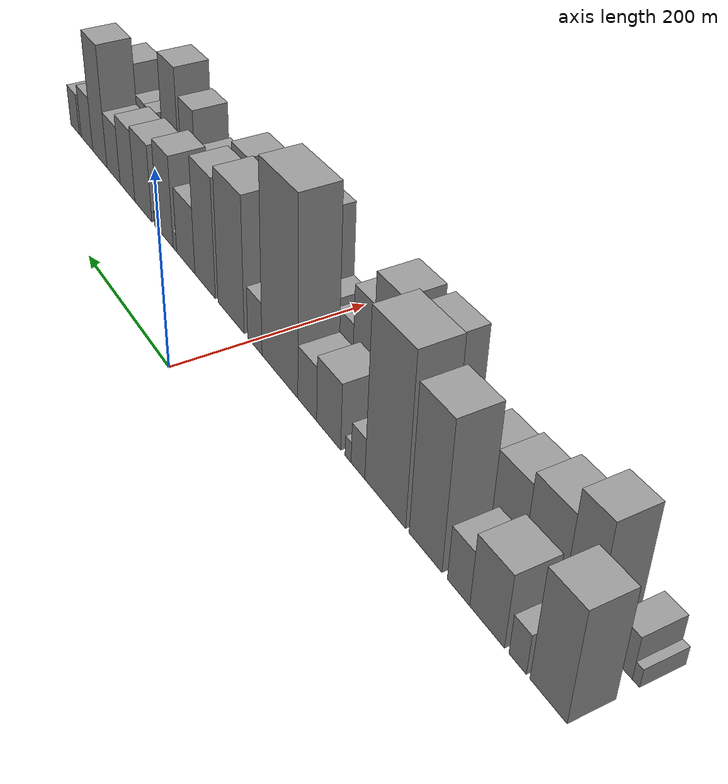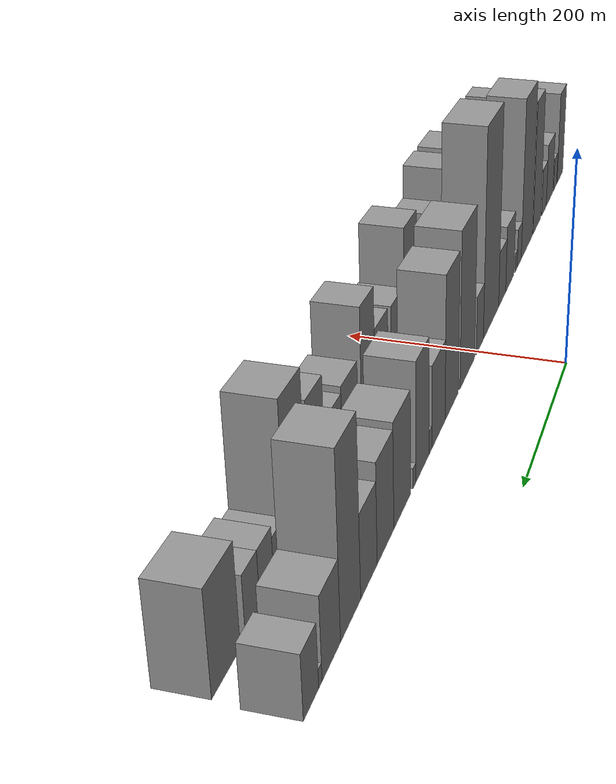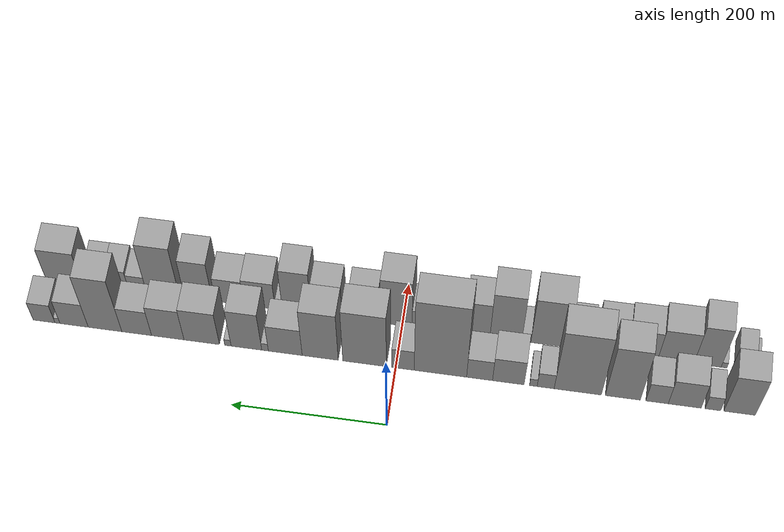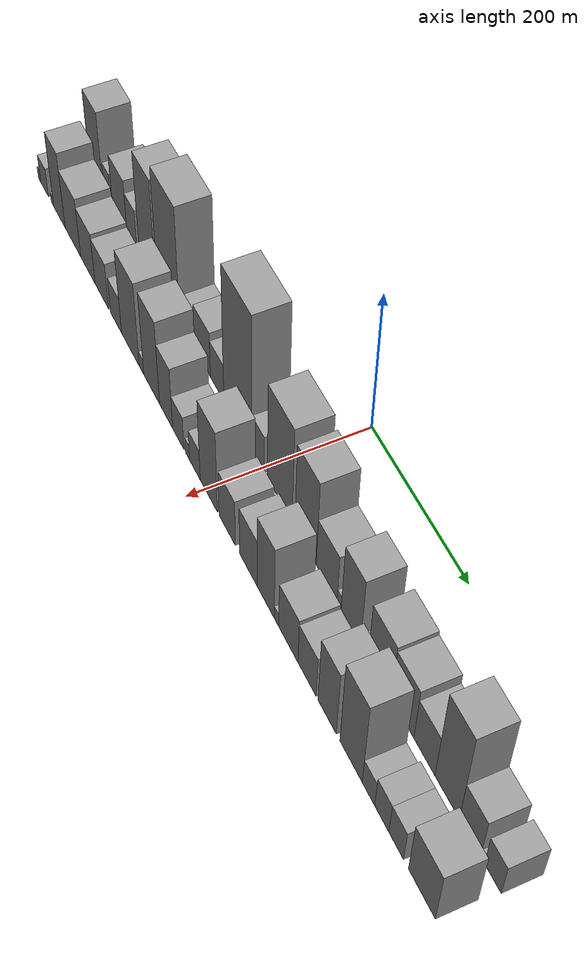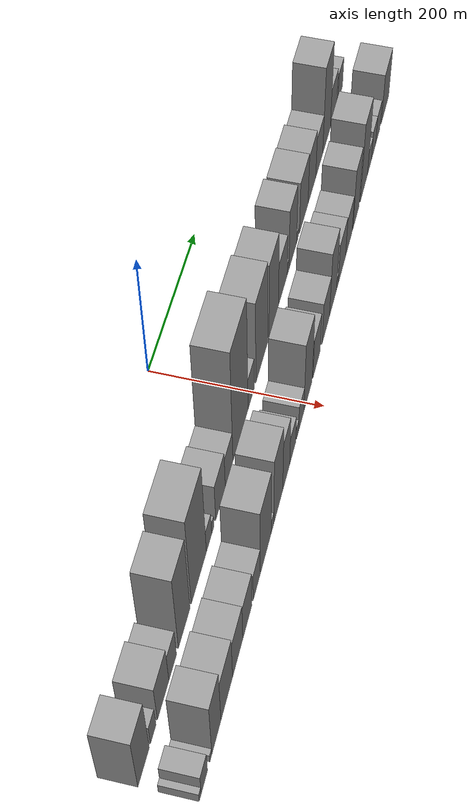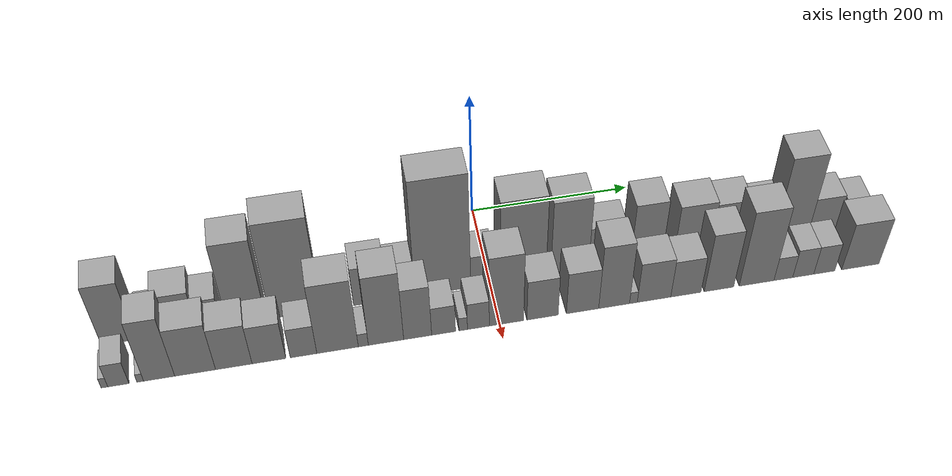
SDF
<sdf version="1.6">
 <world name="default">
  <scene>
   <sky><clouds><speed>12</speed></clouds></sky>
   <ambient>0.4 0.4 0.4 1</ambient>
   <background>0.7 0.7 0.7 1</background>
   <shadows>1</shadows>
  </scene>
  <gravity>0 0 -9.8066</gravity>
  <magnetic_field>6e-06 2.3e-05 -4.2e-05</magnetic_field>
  <physics default="0" name="default_physics" type="ode">
   <ode>
    <solver>
     <type>quick</type>
     <iters>10</iters>
     <sor>1.0</sor>
     <use_dynamic_moi_rescaling>0</use_dynamic_moi_rescaling>
    </solver>
    <constraints>
     <cfm>0</cfm>
     <erp>0.2</erp>
     <contact_max_correcting_vel>100</contact_max_correcting_vel>
     <contact_surface_layer>0.001</contact_surface_layer>
    </constraints>
   </ode>
   <max_step_size>0.004</max_step_size>
   <real_time_factor>1</real_time_factor>
   <real_time_update_rate>250</real_time_update_rate>
  </physics>
  <light name="sun" type="directional">
   <pose>0 0 10 0 0 0</pose>
   <diffuse>0.8 0.8 0.8 1</diffuse>
   <specular>0.2 0.2 0.2 1</specular>
   <attenuation>
    <range>1000</range>
    <constant>0.9</constant>
    <linear>0.01</linear>
    <quadratic>0.001</quadratic>
   </attenuation>
   <direction>-0.5 0.1 -0.9</direction>
  </light>
  <model name="building_1">
   <static>1</static>
   <pose>100.0000 -440.0849 0 0.000000 0.000000 0.000000</pose>
   <link name="link">
    <pose>0 0 54.00 0 0 0</pose>
    <collision name="collision"><geometry><box><size>40.0000 39.8303 108.0000</size></box></geometry></collision>
    <visual name="visual">
     <cast_shadows>0</cast_shadows>
     <geometry><box><size>40.0000 39.8303 108.0000</size></box></geometry>
     <material>
      <script>
       <uri>model://grey_wall/materials/scripts</uri>
       <uri>model://grey_wall/materials/textures</uri>
       <name>vrc/grey_wall</name>
      </script>
     </material>
    </visual>
   </link>
  </model>
  <model name="building_2">
   <static>1</static>
   <pose>100.0000 -406.2775 0 0.000000 0.000000 0.000000</pose>
   <link name="link">
    <pose>0 0 19.50 0 0 0</pose>
    <collision name="collision"><geometry><box><size>40.0000 19.7844 39.0000</size></box></geometry></collision>
    <visual name="visual">
     <cast_shadows>0</cast_shadows>
     <geometry><box><size>40.0000 19.7844 39.0000</size></box></geometry>
     <material>
      <script>
       <uri>model://grey_wall/materials/scripts</uri>
       <uri>model://grey_wall/materials/textures</uri>
       <name>vrc/grey_wall</name>
      </script>
     </material>
    </visual>
   </link>
  </model>
  <model name="building_3">
   <static>1</static>
   <pose>100.0000 -370.4484 0 0.000000 0.000000 0.000000</pose>
   <link name="link">
    <pose>0 0 36.00 0 0 0</pose>
    <collision name="collision"><geometry><box><size>40.0000 41.8738 72.0000</size></box></geometry></collision>
    <visual name="visual">
     <cast_shadows>0</cast_shadows>
     <geometry><box><size>40.0000 41.8738 72.0000</size></box></geometry>
     <material>
      <script>
       <uri>model://grey_wall/materials/scripts</uri>
       <uri>model://grey_wall/materials/textures</uri>
       <name>vrc/grey_wall</name>
      </script>
     </material>
    </visual>
   </link>
  </model>
  <model name="building_4">
   <static>1</static>
   <pose>100.0000 -335.2728 0 0.000000 0.000000 0.000000</pose>
   <link name="link">
    <pose>0 0 27.00 0 0 0</pose>
    <collision name="collision"><geometry><box><size>40.0000 28.4775 54.0000</size></box></geometry></collision>
    <visual name="visual">
     <cast_shadows>0</cast_shadows>
     <geometry><box><size>40.0000 28.4775 54.0000</size></box></geometry>
     <material>
      <script>
       <uri>model://grey_wall/materials/scripts</uri>
       <uri>model://grey_wall/materials/textures</uri>
       <name>vrc/grey_wall</name>
      </script>
     </material>
    </visual>
   </link>
  </model>
  <model name="building_5">
   <static>1</static>
   <pose>100.0000 -291.6385 0 0.000000 0.000000 0.000000</pose>
   <link name="link">
    <pose>0 0 73.50 0 0 0</pose>
    <collision name="collision"><geometry><box><size>40.0000 44.7910 147.0000</size></box></geometry></collision>
    <visual name="visual">
     <cast_shadows>0</cast_shadows>
     <geometry><box><size>40.0000 44.7910 147.0000</size></box></geometry>
     <material>
      <script>
       <uri>model://grey_wall/materials/scripts</uri>
       <uri>model://grey_wall/materials/textures</uri>
       <name>vrc/grey_wall</name>
      </script>
     </material>
    </visual>
   </link>
  </model>
  <model name="building_6">
   <static>1</static>
   <pose>100.0000 -233.9935 0 0.000000 0.000000 0.000000</pose>
   <link name="link">
    <pose>0 0 85.50 0 0 0</pose>
    <collision name="collision"><geometry><box><size>40.0000 60.4989 171.0000</size></box></geometry></collision>
    <visual name="visual">
     <cast_shadows>0</cast_shadows>
     <geometry><box><size>40.0000 60.4989 171.0000</size></box></geometry>
     <material>
      <script>
       <uri>model://grey_wall/materials/scripts</uri>
       <uri>model://grey_wall/materials/textures</uri>
       <name>vrc/grey_wall</name>
      </script>
     </material>
    </visual>
   </link>
  </model>
  <model name="building_7">
   <static>1</static>
   <pose>100.0000 -192.8441 0 0.000000 0.000000 0.000000</pose>
   <link name="link">
    <pose>0 0 21.00 0 0 0</pose>
    <collision name="collision"><geometry><box><size>40.0000 21.8000 42.0000</size></box></geometry></collision>
    <visual name="visual">
     <cast_shadows>0</cast_shadows>
     <geometry><box><size>40.0000 21.8000 42.0000</size></box></geometry>
     <material>
      <script>
       <uri>model://grey_wall/materials/scripts</uri>
       <uri>model://grey_wall/materials/textures</uri>
       <name>vrc/grey_wall</name>
      </script>
     </material>
    </visual>
   </link>
  </model>
  <model name="building_8">
   <static>1</static>
   <pose>100.0000 -177.0930 0 0.000000 0.000000 0.000000</pose>
   <link name="link">
    <pose>0 0 10.50 0 0 0</pose>
    <collision name="collision"><geometry><box><size>40.0000 9.7020 21.0000</size></box></geometry></collision>
    <visual name="visual">
     <cast_shadows>0</cast_shadows>
     <geometry><box><size>40.0000 9.7020 21.0000</size></box></geometry>
     <material>
      <script>
       <uri>model://grey_wall/materials/scripts</uri>
       <uri>model://grey_wall/materials/textures</uri>
       <name>vrc/grey_wall</name>
      </script>
     </material>
    </visual>
   </link>
  </model>
  <model name="building_9">
   <static>1</static>
   <pose>100.0000 -144.9554 0 0.000000 0.000000 0.000000</pose>
   <link name="link">
    <pose>0 0 34.50 0 0 0</pose>
    <collision name="collision"><geometry><box><size>40.0000 40.5733 69.0000</size></box></geometry></collision>
    <visual name="visual">
     <cast_shadows>0</cast_shadows>
     <geometry><box><size>40.0000 40.5733 69.0000</size></box></geometry>
     <material>
      <script>
       <uri>model://grey_wall/materials/scripts</uri>
       <uri>model://grey_wall/materials/textures</uri>
       <name>vrc/grey_wall</name>
      </script>
     </material>
    </visual>
   </link>
  </model>
  <model name="building_10">
   <static>1</static>
   <pose>100.0000 -107.9906 0 0.000000 0.000000 0.000000</pose>
   <link name="link">
    <pose>0 0 28.50 0 0 0</pose>
    <collision name="collision"><geometry><box><size>40.0000 33.3563 57.0000</size></box></geometry></collision>
    <visual name="visual">
     <cast_shadows>0</cast_shadows>
     <geometry><box><size>40.0000 33.3563 57.0000</size></box></geometry>
     <material>
      <script>
       <uri>model://grey_wall/materials/scripts</uri>
       <uri>model://grey_wall/materials/textures</uri>
       <name>vrc/grey_wall</name>
      </script>
     </material>
    </visual>
   </link>
  </model>
  <model name="building_11">
   <static>1</static>
   <pose>100.0000 -57.4001 0 0.000000 0.000000 0.000000</pose>
   <link name="link">
    <pose>0 0 102.00 0 0 0</pose>
    <collision name="collision"><geometry><box><size>40.0000 67.8247 204.0000</size></box></geometry></collision>
    <visual name="visual">
     <cast_shadows>0</cast_shadows>
     <geometry><box><size>40.0000 67.8247 204.0000</size></box></geometry>
     <material>
      <script>
       <uri>model://grey_wall/materials/scripts</uri>
       <uri>model://grey_wall/materials/textures</uri>
       <name>vrc/grey_wall</name>
      </script>
     </material>
    </visual>
   </link>
  </model>
  <model name="building_12">
   <static>1</static>
   <pose>100.0000 -8.9918 0 0.000000 0.000000 0.000000</pose>
   <link name="link">
    <pose>0 0 28.50 0 0 0</pose>
    <collision name="collision"><geometry><box><size>40.0000 28.9918 57.0000</size></box></geometry></collision>
    <visual name="visual">
     <cast_shadows>0</cast_shadows>
     <geometry><box><size>40.0000 28.9918 57.0000</size></box></geometry>
     <material>
      <script>
       <uri>model://grey_wall/materials/scripts</uri>
       <uri>model://grey_wall/materials/textures</uri>
       <name>vrc/grey_wall</name>
      </script>
     </material>
    </visual>
   </link>
  </model>
  <model name="building_13">
   <static>1</static>
   <pose>100.0000 40.7301 0 0.000000 0.000000 0.000000</pose>
   <link name="link">
    <pose>0 0 73.50 0 0 0</pose>
    <collision name="collision"><geometry><box><size>40.0000 56.4522 147.0000</size></box></geometry></collision>
    <visual name="visual">
     <cast_shadows>0</cast_shadows>
     <geometry><box><size>40.0000 56.4522 147.0000</size></box></geometry>
     <material>
      <script>
       <uri>model://grey_wall/materials/scripts</uri>
       <uri>model://grey_wall/materials/textures</uri>
       <name>vrc/grey_wall</name>
      </script>
     </material>
    </visual>
   </link>
  </model>
  <model name="building_14">
   <static>1</static>
   <pose>100.0000 98.3930 0 0.000000 0.000000 0.000000</pose>
   <link name="link">
    <pose>0 0 66.00 0 0 0</pose>
    <collision name="collision"><geometry><box><size>40.0000 46.8735 132.0000</size></box></geometry></collision>
    <visual name="visual">
     <cast_shadows>0</cast_shadows>
     <geometry><box><size>40.0000 46.8735 132.0000</size></box></geometry>
     <material>
      <script>
       <uri>model://grey_wall/materials/scripts</uri>
       <uri>model://grey_wall/materials/textures</uri>
       <name>vrc/grey_wall</name>
      </script>
     </material>
    </visual>
   </link>
  </model>
  <model name="building_15">
   <static>1</static>
   <pose>100.0000 143.9067 0 0.000000 0.000000 0.000000</pose>
   <link name="link">
    <pose>0 0 37.50 0 0 0</pose>
    <collision name="collision"><geometry><box><size>40.0000 44.1539 75.0000</size></box></geometry></collision>
    <visual name="visual">
     <cast_shadows>0</cast_shadows>
     <geometry><box><size>40.0000 44.1539 75.0000</size></box></geometry>
     <material>
      <script>
       <uri>model://grey_wall/materials/scripts</uri>
       <uri>model://grey_wall/materials/textures</uri>
       <name>vrc/grey_wall</name>
      </script>
     </material>
    </visual>
   </link>
  </model>
  <model name="building_16">
   <static>1</static>
   <pose>100.0000 170.3038 0 0.000000 0.000000 0.000000</pose>
   <link name="link">
    <pose>0 0 10.50 0 0 0</pose>
    <collision name="collision"><geometry><box><size>40.0000 8.6403 21.0000</size></box></geometry></collision>
    <visual name="visual">
     <cast_shadows>0</cast_shadows>
     <geometry><box><size>40.0000 8.6403 21.0000</size></box></geometry>
     <material>
      <script>
       <uri>model://grey_wall/materials/scripts</uri>
       <uri>model://grey_wall/materials/textures</uri>
       <name>vrc/grey_wall</name>
      </script>
     </material>
    </visual>
   </link>
  </model>
  <model name="building_17">
   <static>1</static>
   <pose>100.0000 194.6570 0 0.000000 0.000000 0.000000</pose>
   <link name="link">
    <pose>0 0 52.50 0 0 0</pose>
    <collision name="collision"><geometry><box><size>40.0000 40.0660 105.0000</size></box></geometry></collision>
    <visual name="visual">
     <cast_shadows>0</cast_shadows>
     <geometry><box><size>40.0000 40.0660 105.0000</size></box></geometry>
     <material>
      <script>
       <uri>model://grey_wall/materials/scripts</uri>
       <uri>model://grey_wall/materials/textures</uri>
       <name>vrc/grey_wall</name>
      </script>
     </material>
    </visual>
   </link>
  </model>
  <model name="building_18">
   <static>1</static>
   <pose>100.0000 218.8424 0 0.000000 0.000000 0.000000</pose>
   <link name="link">
    <pose>0 0 9.00 0 0 0</pose>
    <collision name="collision"><geometry><box><size>40.0000 8.3046 18.0000</size></box></geometry></collision>
    <visual name="visual">
     <cast_shadows>0</cast_shadows>
     <geometry><box><size>40.0000 8.3046 18.0000</size></box></geometry>
     <material>
      <script>
       <uri>model://grey_wall/materials/scripts</uri>
       <uri>model://grey_wall/materials/textures</uri>
       <name>vrc/grey_wall</name>
      </script>
     </material>
    </visual>
   </link>
  </model>
  <model name="building_19">
   <static>1</static>
   <pose>100.0000 253.2356 0 0.000000 0.000000 0.000000</pose>
   <link name="link">
    <pose>0 0 45.00 0 0 0</pose>
    <collision name="collision"><geometry><box><size>40.0000 46.4818 90.0000</size></box></geometry></collision>
    <visual name="visual">
     <cast_shadows>0</cast_shadows>
     <geometry><box><size>40.0000 46.4818 90.0000</size></box></geometry>
     <material>
      <script>
       <uri>model://grey_wall/materials/scripts</uri>
       <uri>model://grey_wall/materials/textures</uri>
       <name>vrc/grey_wall</name>
      </script>
     </material>
    </visual>
   </link>
  </model>
  <model name="building_20">
   <static>1</static>
   <pose>100.0000 297.7611 0 0.000000 0.000000 0.000000</pose>
   <link name="link">
    <pose>0 0 42.00 0 0 0</pose>
    <collision name="collision"><geometry><box><size>40.0000 42.5693 84.0000</size></box></geometry></collision>
    <visual name="visual">
     <cast_shadows>0</cast_shadows>
     <geometry><box><size>40.0000 42.5693 84.0000</size></box></geometry>
     <material>
      <script>
       <uri>model://grey_wall/materials/scripts</uri>
       <uri>model://grey_wall/materials/textures</uri>
       <name>vrc/grey_wall</name>
      </script>
     </material>
    </visual>
   </link>
  </model>
  <model name="building_21">
   <static>1</static>
   <pose>100.0000 338.6976 0 0.000000 0.000000 0.000000</pose>
   <link name="link">
    <pose>0 0 34.50 0 0 0</pose>
    <collision name="collision"><geometry><box><size>40.0000 39.3038 69.0000</size></box></geometry></collision>
    <visual name="visual">
     <cast_shadows>0</cast_shadows>
     <geometry><box><size>40.0000 39.3038 69.0000</size></box></geometry>
     <material>
      <script>
       <uri>model://grey_wall/materials/scripts</uri>
       <uri>model://grey_wall/materials/textures</uri>
       <name>vrc/grey_wall</name>
      </script>
     </material>
    </visual>
   </link>
  </model>
  <model name="building_22">
   <static>1</static>
   <pose>100.0000 380.4937 0 0.000000 0.000000 0.000000</pose>
   <link name="link">
    <pose>0 0 73.50 0 0 0</pose>
    <collision name="collision"><geometry><box><size>40.0000 44.2884 147.0000</size></box></geometry></collision>
    <visual name="visual">
     <cast_shadows>0</cast_shadows>
     <geometry><box><size>40.0000 44.2884 147.0000</size></box></geometry>
     <material>
      <script>
       <uri>model://grey_wall/materials/scripts</uri>
       <uri>model://grey_wall/materials/textures</uri>
       <name>vrc/grey_wall</name>
      </script>
     </material>
    </visual>
   </link>
  </model>
  <model name="building_23">
   <static>1</static>
   <pose>100.0000 421.4014 0 0.000000 0.000000 0.000000</pose>
   <link name="link">
    <pose>0 0 33.00 0 0 0</pose>
    <collision name="collision"><geometry><box><size>40.0000 37.5268 66.0000</size></box></geometry></collision>
    <visual name="visual">
     <cast_shadows>0</cast_shadows>
     <geometry><box><size>40.0000 37.5268 66.0000</size></box></geometry>
     <material>
      <script>
       <uri>model://grey_wall/materials/scripts</uri>
       <uri>model://grey_wall/materials/textures</uri>
       <name>vrc/grey_wall</name>
      </script>
     </material>
    </visual>
   </link>
  </model>
  <model name="building_24">
   <static>1</static>
   <pose>100.0000 443.4275 0 0.000000 0.000000 0.000000</pose>
   <link name="link">
    <pose>0 0 7.50 0 0 0</pose>
    <collision name="collision"><geometry><box><size>40.0000 6.5254 15.0000</size></box></geometry></collision>
    <visual name="visual">
     <cast_shadows>0</cast_shadows>
     <geometry><box><size>40.0000 6.5254 15.0000</size></box></geometry>
     <material>
      <script>
       <uri>model://grey_wall/materials/scripts</uri>
       <uri>model://grey_wall/materials/textures</uri>
       <name>vrc/grey_wall</name>
      </script>
     </material>
    </visual>
   </link>
  </model>
  <model name="building_25">
   <static>1</static>
   <pose>100.0000 461.1405 0 0.000000 0.000000 0.000000</pose>
   <link name="link">
    <pose>0 0 25.50 0 0 0</pose>
    <collision name="collision"><geometry><box><size>40.0000 28.9006 51.0000</size></box></geometry></collision>
    <visual name="visual">
     <cast_shadows>0</cast_shadows>
     <geometry><box><size>40.0000 28.9006 51.0000</size></box></geometry>
     <material>
      <script>
       <uri>model://grey_wall/materials/scripts</uri>
       <uri>model://grey_wall/materials/textures</uri>
       <name>vrc/grey_wall</name>
      </script>
     </material>
    </visual>
   </link>
  </model>
  <model name="building_26">
   <static>1</static>
   <pose>160.0000 -456.3211 0 0.000000 0.000000 0.000000</pose>
   <link name="link">
    <pose>0 0 9.00 0 0 0</pose>
    <collision name="collision"><geometry><box><size>40.0000 7.3578 18.0000</size></box></geometry></collision>
    <visual name="visual">
     <cast_shadows>0</cast_shadows>
     <geometry><box><size>40.0000 7.3578 18.0000</size></box></geometry>
     <material>
      <script>
       <uri>model://grey_wall/materials/scripts</uri>
       <uri>model://grey_wall/materials/textures</uri>
       <name>vrc/grey_wall</name>
      </script>
     </material>
    </visual>
   </link>
  </model>
  <model name="building_27">
   <static>1</static>
   <pose>160.0000 -440.8470 0 0.000000 0.000000 0.000000</pose>
   <link name="link">
    <pose>0 0 21.00 0 0 0</pose>
    <collision name="collision"><geometry><box><size>40.0000 23.5903 42.0000</size></box></geometry></collision>
    <visual name="visual">
     <cast_shadows>0</cast_shadows>
     <geometry><box><size>40.0000 23.5903 42.0000</size></box></geometry>
     <material>
      <script>
       <uri>model://grey_wall/materials/scripts</uri>
       <uri>model://grey_wall/materials/textures</uri>
       <name>vrc/grey_wall</name>
      </script>
     </material>
    </visual>
   </link>
  </model>
  <model name="building_28">
   <static>1</static>
   <pose>160.0000 -416.3451 0 0.000000 0.000000 0.000000</pose>
   <link name="link">
    <pose>0 0 7.50 0 0 0</pose>
    <collision name="collision"><geometry><box><size>40.0000 7.4136 15.0000</size></box></geometry></collision>
    <visual name="visual">
     <cast_shadows>0</cast_shadows>
     <geometry><box><size>40.0000 7.4136 15.0000</size></box></geometry>
     <material>
      <script>
       <uri>model://grey_wall/materials/scripts</uri>
       <uri>model://grey_wall/materials/textures</uri>
       <name>vrc/grey_wall</name>
      </script>
     </material>
    </visual>
   </link>
  </model>
  <model name="building_29">
   <static>1</static>
   <pose>160.0000 -395.1286 0 0.000000 0.000000 0.000000</pose>
   <link name="link">
    <pose>0 0 55.50 0 0 0</pose>
    <collision name="collision"><geometry><box><size>40.0000 35.0195 111.0000</size></box></geometry></collision>
    <visual name="visual">
     <cast_shadows>0</cast_shadows>
     <geometry><box><size>40.0000 35.0195 111.0000</size></box></geometry>
     <material>
      <script>
       <uri>model://grey_wall/materials/scripts</uri>
       <uri>model://grey_wall/materials/textures</uri>
       <name>vrc/grey_wall</name>
      </script>
     </material>
    </visual>
   </link>
  </model>
  <model name="building_30">
   <static>1</static>
   <pose>160.0000 -354.5371 0 0.000000 0.000000 0.000000</pose>
   <link name="link">
    <pose>0 0 43.50 0 0 0</pose>
    <collision name="collision"><geometry><box><size>40.0000 46.1633 87.0000</size></box></geometry></collision>
    <visual name="visual">
     <cast_shadows>0</cast_shadows>
     <geometry><box><size>40.0000 46.1633 87.0000</size></box></geometry>
     <material>
      <script>
       <uri>model://grey_wall/materials/scripts</uri>
       <uri>model://grey_wall/materials/textures</uri>
       <name>vrc/grey_wall</name>
      </script>
     </material>
    </visual>
   </link>
  </model>
  <model name="building_31">
   <static>1</static>
   <pose>160.0000 -310.6284 0 0.000000 0.000000 0.000000</pose>
   <link name="link">
    <pose>0 0 37.50 0 0 0</pose>
    <collision name="collision"><geometry><box><size>40.0000 41.6542 75.0000</size></box></geometry></collision>
    <visual name="visual">
     <cast_shadows>0</cast_shadows>
     <geometry><box><size>40.0000 41.6542 75.0000</size></box></geometry>
     <material>
      <script>
       <uri>model://grey_wall/materials/scripts</uri>
       <uri>model://grey_wall/materials/textures</uri>
       <name>vrc/grey_wall</name>
      </script>
     </material>
    </visual>
   </link>
  </model>
  <model name="building_32">
   <static>1</static>
   <pose>160.0000 -270.4407 0 0.000000 0.000000 0.000000</pose>
   <link name="link">
    <pose>0 0 34.50 0 0 0</pose>
    <collision name="collision"><geometry><box><size>40.0000 38.7213 69.0000</size></box></geometry></collision>
    <visual name="visual">
     <cast_shadows>0</cast_shadows>
     <geometry><box><size>40.0000 38.7213 69.0000</size></box></geometry>
     <material>
      <script>
       <uri>model://grey_wall/materials/scripts</uri>
       <uri>model://grey_wall/materials/textures</uri>
       <name>vrc/grey_wall</name>
      </script>
     </material>
    </visual>
   </link>
  </model>
  <model name="building_33">
   <static>1</static>
   <pose>160.0000 -230.6808 0 0.000000 0.000000 0.000000</pose>
   <link name="link">
    <pose>0 0 27.00 0 0 0</pose>
    <collision name="collision"><geometry><box><size>40.0000 30.7986 54.0000</size></box></geometry></collision>
    <visual name="visual">
     <cast_shadows>0</cast_shadows>
     <geometry><box><size>40.0000 30.7986 54.0000</size></box></geometry>
     <material>
      <script>
       <uri>model://grey_wall/materials/scripts</uri>
       <uri>model://grey_wall/materials/textures</uri>
       <name>vrc/grey_wall</name>
      </script>
     </material>
    </visual>
   </link>
  </model>
  <model name="building_34">
   <static>1</static>
   <pose>160.0000 -191.2070 0 0.000000 0.000000 0.000000</pose>
   <link name="link">
    <pose>0 0 63.00 0 0 0</pose>
    <collision name="collision"><geometry><box><size>40.0000 48.1490 126.0000</size></box></geometry></collision>
    <visual name="visual">
     <cast_shadows>0</cast_shadows>
     <geometry><box><size>40.0000 48.1490 126.0000</size></box></geometry>
     <material>
      <script>
       <uri>model://grey_wall/materials/scripts</uri>
       <uri>model://grey_wall/materials/textures</uri>
       <name>vrc/grey_wall</name>
      </script>
     </material>
    </visual>
   </link>
  </model>
  <model name="building_35">
   <static>1</static>
   <pose>160.0000 -161.2732 0 0.000000 0.000000 0.000000</pose>
   <link name="link">
    <pose>0 0 12.00 0 0 0</pose>
    <collision name="collision"><geometry><box><size>40.0000 11.7187 24.0000</size></box></geometry></collision>
    <visual name="visual">
     <cast_shadows>0</cast_shadows>
     <geometry><box><size>40.0000 11.7187 24.0000</size></box></geometry>
     <material>
      <script>
       <uri>model://grey_wall/materials/scripts</uri>
       <uri>model://grey_wall/materials/textures</uri>
       <name>vrc/grey_wall</name>
      </script>
     </material>
    </visual>
   </link>
  </model>
  <model name="building_36">
   <static>1</static>
   <pose>160.0000 -134.6918 0 0.000000 0.000000 0.000000</pose>
   <link name="link">
    <pose>0 0 63.00 0 0 0</pose>
    <collision name="collision"><geometry><box><size>40.0000 41.4441 126.0000</size></box></geometry></collision>
    <visual name="visual">
     <cast_shadows>0</cast_shadows>
     <geometry><box><size>40.0000 41.4441 126.0000</size></box></geometry>
     <material>
      <script>
       <uri>model://grey_wall/materials/scripts</uri>
       <uri>model://grey_wall/materials/textures</uri>
       <name>vrc/grey_wall</name>
      </script>
     </material>
    </visual>
   </link>
  </model>
  <model name="building_37">
   <static>1</static>
   <pose>160.0000 -97.4610 0 0.000000 0.000000 0.000000</pose>
   <link name="link">
    <pose>0 0 46.50 0 0 0</pose>
    <collision name="collision"><geometry><box><size>40.0000 33.0175 93.0000</size></box></geometry></collision>
    <visual name="visual">
     <cast_shadows>0</cast_shadows>
     <geometry><box><size>40.0000 33.0175 93.0000</size></box></geometry>
     <material>
      <script>
       <uri>model://grey_wall/materials/scripts</uri>
       <uri>model://grey_wall/materials/textures</uri>
       <name>vrc/grey_wall</name>
      </script>
     </material>
    </visual>
   </link>
  </model>
  <model name="building_38">
   <static>1</static>
   <pose>160.0000 -66.7490 0 0.000000 0.000000 0.000000</pose>
   <link name="link">
    <pose>0 0 25.50 0 0 0</pose>
    <collision name="collision"><geometry><box><size>40.0000 28.4066 51.0000</size></box></geometry></collision>
    <visual name="visual">
     <cast_shadows>0</cast_shadows>
     <geometry><box><size>40.0000 28.4066 51.0000</size></box></geometry>
     <material>
      <script>
       <uri>model://grey_wall/materials/scripts</uri>
       <uri>model://grey_wall/materials/textures</uri>
       <name>vrc/grey_wall</name>
      </script>
     </material>
    </visual>
   </link>
  </model>
  <model name="building_39">
   <static>1</static>
   <pose>160.0000 -43.5140 0 0.000000 0.000000 0.000000</pose>
   <link name="link">
    <pose>0 0 12.00 0 0 0</pose>
    <collision name="collision"><geometry><box><size>40.0000 10.0635 24.0000</size></box></geometry></collision>
    <visual name="visual">
     <cast_shadows>0</cast_shadows>
     <geometry><box><size>40.0000 10.0635 24.0000</size></box></geometry>
     <material>
      <script>
       <uri>model://grey_wall/materials/scripts</uri>
       <uri>model://grey_wall/materials/textures</uri>
       <name>vrc/grey_wall</name>
      </script>
     </material>
    </visual>
   </link>
  </model>
  <model name="building_40">
   <static>1</static>
   <pose>160.0000 -25.4623 0 0.000000 0.000000 0.000000</pose>
   <link name="link">
    <pose>0 0 24.00 0 0 0</pose>
    <collision name="collision"><geometry><box><size>40.0000 26.0398 48.0000</size></box></geometry></collision>
    <visual name="visual">
     <cast_shadows>0</cast_shadows>
     <geometry><box><size>40.0000 26.0398 48.0000</size></box></geometry>
     <material>
      <script>
       <uri>model://grey_wall/materials/scripts</uri>
       <uri>model://grey_wall/materials/textures</uri>
       <name>vrc/grey_wall</name>
      </script>
     </material>
    </visual>
   </link>
  </model>
  <model name="building_41">
   <static>1</static>
   <pose>160.0000 8.1595 0 0.000000 0.000000 0.000000</pose>
   <link name="link">
    <pose>0 0 63.00 0 0 0</pose>
    <collision name="collision"><geometry><box><size>40.0000 41.2038 126.0000</size></box></geometry></collision>
    <visual name="visual">
     <cast_shadows>0</cast_shadows>
     <geometry><box><size>40.0000 41.2038 126.0000</size></box></geometry>
     <material>
      <script>
       <uri>model://grey_wall/materials/scripts</uri>
       <uri>model://grey_wall/materials/textures</uri>
       <name>vrc/grey_wall</name>
      </script>
     </material>
    </visual>
   </link>
  </model>
  <model name="building_42">
   <static>1</static>
   <pose>160.0000 51.6593 0 0.000000 0.000000 0.000000</pose>
   <link name="link">
    <pose>0 0 36.00 0 0 0</pose>
    <collision name="collision"><geometry><box><size>40.0000 37.7958 72.0000</size></box></geometry></collision>
    <visual name="visual">
     <cast_shadows>0</cast_shadows>
     <geometry><box><size>40.0000 37.7958 72.0000</size></box></geometry>
     <material>
      <script>
       <uri>model://grey_wall/materials/scripts</uri>
       <uri>model://grey_wall/materials/textures</uri>
       <name>vrc/grey_wall</name>
      </script>
     </material>
    </visual>
   </link>
  </model>
  <model name="building_43">
   <static>1</static>
   <pose>160.0000 100.2348 0 0.000000 0.000000 0.000000</pose>
   <link name="link">
    <pose>0 0 37.50 0 0 0</pose>
    <collision name="collision"><geometry><box><size>40.0000 39.3552 75.0000</size></box></geometry></collision>
    <visual name="visual">
     <cast_shadows>0</cast_shadows>
     <geometry><box><size>40.0000 39.3552 75.0000</size></box></geometry>
     <material>
      <script>
       <uri>model://grey_wall/materials/scripts</uri>
       <uri>model://grey_wall/materials/textures</uri>
       <name>vrc/grey_wall</name>
      </script>
     </material>
    </visual>
   </link>
  </model>
  <model name="building_44">
   <static>1</static>
   <pose>160.0000 138.8338 0 0.000000 0.000000 0.000000</pose>
   <link name="link">
    <pose>0 0 57.00 0 0 0</pose>
    <collision name="collision"><geometry><box><size>40.0000 37.8429 114.0000</size></box></geometry></collision>
    <visual name="visual">
     <cast_shadows>0</cast_shadows>
     <geometry><box><size>40.0000 37.8429 114.0000</size></box></geometry>
     <material>
      <script>
       <uri>model://grey_wall/materials/scripts</uri>
       <uri>model://grey_wall/materials/textures</uri>
       <name>vrc/grey_wall</name>
      </script>
     </material>
    </visual>
   </link>
  </model>
  <model name="building_45">
   <static>1</static>
   <pose>160.0000 162.5319 0 0.000000 0.000000 0.000000</pose>
   <link name="link">
    <pose>0 0 10.50 0 0 0</pose>
    <collision name="collision"><geometry><box><size>40.0000 9.5532 21.0000</size></box></geometry></collision>
    <visual name="visual">
     <cast_shadows>0</cast_shadows>
     <geometry><box><size>40.0000 9.5532 21.0000</size></box></geometry>
     <material>
      <script>
       <uri>model://grey_wall/materials/scripts</uri>
       <uri>model://grey_wall/materials/textures</uri>
       <name>vrc/grey_wall</name>
      </script>
     </material>
    </visual>
   </link>
  </model>
  <model name="building_46">
   <static>1</static>
   <pose>160.0000 187.9962 0 0.000000 0.000000 0.000000</pose>
   <link name="link">
    <pose>0 0 36.00 0 0 0</pose>
    <collision name="collision"><geometry><box><size>40.0000 41.3756 72.0000</size></box></geometry></collision>
    <visual name="visual">
     <cast_shadows>0</cast_shadows>
     <geometry><box><size>40.0000 41.3756 72.0000</size></box></geometry>
     <material>
      <script>
       <uri>model://grey_wall/materials/scripts</uri>
       <uri>model://grey_wall/materials/textures</uri>
       <name>vrc/grey_wall</name>
      </script>
     </material>
    </visual>
   </link>
  </model>
  <model name="building_47">
   <static>1</static>
   <pose>160.0000 227.5072 0 0.000000 0.000000 0.000000</pose>
   <link name="link">
    <pose>0 0 33.00 0 0 0</pose>
    <collision name="collision"><geometry><box><size>40.0000 37.6463 66.0000</size></box></geometry></collision>
    <visual name="visual">
     <cast_shadows>0</cast_shadows>
     <geometry><box><size>40.0000 37.6463 66.0000</size></box></geometry>
     <material>
      <script>
       <uri>model://grey_wall/materials/scripts</uri>
       <uri>model://grey_wall/materials/textures</uri>
       <name>vrc/grey_wall</name>
      </script>
     </material>
    </visual>
   </link>
  </model>
  <model name="building_48">
   <static>1</static>
   <pose>160.0000 268.7832 0 0.000000 0.000000 0.000000</pose>
   <link name="link">
    <pose>0 0 52.50 0 0 0</pose>
    <collision name="collision"><geometry><box><size>40.0000 36.9058 105.0000</size></box></geometry></collision>
    <visual name="visual">
     <cast_shadows>0</cast_shadows>
     <geometry><box><size>40.0000 36.9058 105.0000</size></box></geometry>
     <material>
      <script>
       <uri>model://grey_wall/materials/scripts</uri>
       <uri>model://grey_wall/materials/textures</uri>
       <name>vrc/grey_wall</name>
      </script>
     </material>
    </visual>
   </link>
  </model>
  <model name="building_49">
   <static>1</static>
   <pose>160.0000 316.1286 0 0.000000 0.000000 0.000000</pose>
   <link name="link">
    <pose>0 0 67.50 0 0 0</pose>
    <collision name="collision"><geometry><box><size>40.0000 43.7850 135.0000</size></box></geometry></collision>
    <visual name="visual">
     <cast_shadows>0</cast_shadows>
     <geometry><box><size>40.0000 43.7850 135.0000</size></box></geometry>
     <material>
      <script>
       <uri>model://grey_wall/materials/scripts</uri>
       <uri>model://grey_wall/materials/textures</uri>
       <name>vrc/grey_wall</name>
      </script>
     </material>
    </visual>
   </link>
  </model>
  <model name="building_50">
   <static>1</static>
   <pose>160.0000 349.9202 0 0.000000 0.000000 0.000000</pose>
   <link name="link">
    <pose>0 0 21.00 0 0 0</pose>
    <collision name="collision"><geometry><box><size>40.0000 23.7983 42.0000</size></box></geometry></collision>
    <visual name="visual">
     <cast_shadows>0</cast_shadows>
     <geometry><box><size>40.0000 23.7983 42.0000</size></box></geometry>
     <material>
      <script>
       <uri>model://grey_wall/materials/scripts</uri>
       <uri>model://grey_wall/materials/textures</uri>
       <name>vrc/grey_wall</name>
      </script>
     </material>
    </visual>
   </link>
  </model>
  <model name="building_51">
   <static>1</static>
   <pose>160.0000 375.1726 0 0.000000 0.000000 0.000000</pose>
   <link name="link">
    <pose>0 0 25.50 0 0 0</pose>
    <collision name="collision"><geometry><box><size>40.0000 26.7064 51.0000</size></box></geometry></collision>
    <visual name="visual">
     <cast_shadows>0</cast_shadows>
     <geometry><box><size>40.0000 26.7064 51.0000</size></box></geometry>
     <material>
      <script>
       <uri>model://grey_wall/materials/scripts</uri>
       <uri>model://grey_wall/materials/textures</uri>
       <name>vrc/grey_wall</name>
      </script>
     </material>
    </visual>
   </link>
  </model>
  <model name="building_52">
   <static>1</static>
   <pose>160.0000 401.9893 0 0.000000 0.000000 0.000000</pose>
   <link name="link">
    <pose>0 0 25.50 0 0 0</pose>
    <collision name="collision"><geometry><box><size>40.0000 26.9272 51.0000</size></box></geometry></collision>
    <visual name="visual">
     <cast_shadows>0</cast_shadows>
     <geometry><box><size>40.0000 26.9272 51.0000</size></box></geometry>
     <material>
      <script>
       <uri>model://grey_wall/materials/scripts</uri>
       <uri>model://grey_wall/materials/textures</uri>
       <name>vrc/grey_wall</name>
      </script>
     </material>
    </visual>
   </link>
  </model>
  <model name="building_53">
   <static>1</static>
   <pose>160.0000 448.4171 0 0.000000 0.000000 0.000000</pose>
   <link name="link">
    <pose>0 0 42.00 0 0 0</pose>
    <collision name="collision"><geometry><box><size>40.0000 47.9284 84.0000</size></box></geometry></collision>
    <visual name="visual">
     <cast_shadows>0</cast_shadows>
     <geometry><box><size>40.0000 47.9284 84.0000</size></box></geometry>
     <material>
      <script>
       <uri>model://grey_wall/materials/scripts</uri>
       <uri>model://grey_wall/materials/textures</uri>
       <name>vrc/grey_wall</name>
      </script>
     </material>
    </visual>
   </link>
  </model>
 </world>
</sdf>
